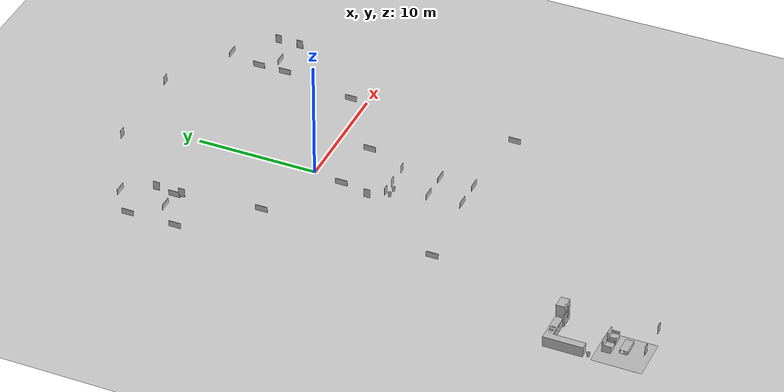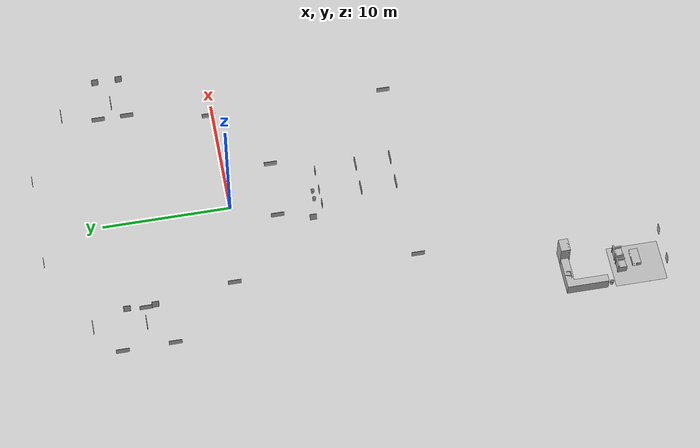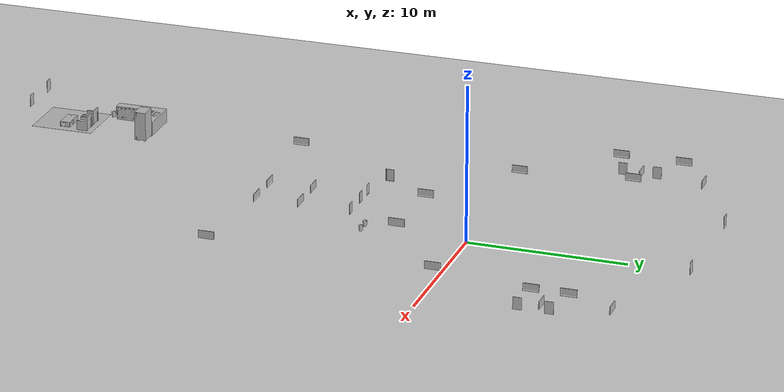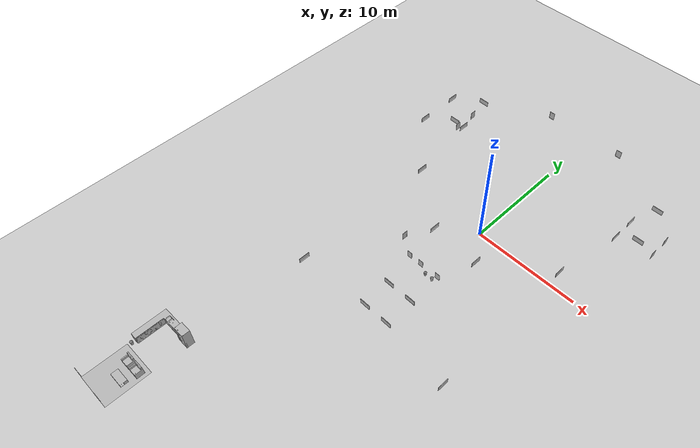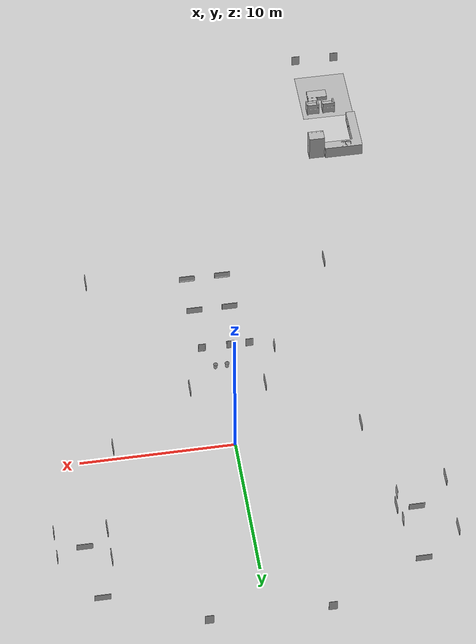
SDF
<sdf version="1.7">
 <world name="world">
  <gravity>0 0 -9.8</gravity>
  <physics name="default_physics" default="0" type="ode">
   <max_step_size>0.001</max_step_size>
   <real_time_factor>1</real_time_factor>
   <real_time_update_rate>1000</real_time_update_rate>
  </physics>
  <scene><ambient>0.6 0.6 0.6 1</ambient><background>0.4 0.4 0.4 1</background><shadows>0</shadows></scene>
  <light name="sun" type="directional">
   <pose>0 0 10 0 -0 0</pose>
   <diffuse>0.8 0.8 0.8 1</diffuse>
   <specular>0.2 0.2 0.2 1</specular>
   <attenuation>
    <range>1000</range>
    <constant>0.9</constant>
    <linear>0.01</linear>
    <quadratic>0.001</quadratic>
   </attenuation>
   <direction>-0.5 0.1 -0.9</direction>
   <spot><inner_angle>0</inner_angle><outer_angle>0</outer_angle><falloff>0</falloff></spot>
  </light>
  <model name="ground_plane">
   <static>1</static>
   <link name="link">
    <collision name="collision">
     <geometry><plane><normal>0 0 1</normal><size>100 100</size></plane></geometry>
     <surface>
      <contact><collide_bitmask>65535</collide_bitmask></contact>
      <friction><ode><mu>100</mu><mu2>50</mu2></ode></friction>
     </surface>
    </collision>
    <visual name="visual">
     <cast_shadows>0</cast_shadows>
     <geometry><plane><normal>0 0 1</normal><size>100 100</size></plane></geometry>
     <material>
      <script><uri>file://media/materials/scripts/gazebo.material</uri><name>Gazebo/Grey</name></script>
     </material>
    </visual>
   </link>
   <pose>0 0 -0.1 0 -0 0</pose>
  </model>
  <model name="CGMClassic_1"/>
  <model name="StorageRack_1"/>
  <model name="CGMClassic_2"/>
  <model name="Chair_1"/>
  <model name="Chair_2"/>
  <model name="Scrubs_1"/>
  <model name="Scrubs_2"/>
  <model name="PatientWheelChair_1"/>
  <model name="Scrubs_3"/>
  <model name="WhiteChipChair_1"/>
  <model name="TrolleyBed_1"/>
  <model name="SurgicalTrolley_1"/>
  <model name="CGMClassic_3"/>
  <model name="PotatoChipChair_1"/>
  <model name="PotatoChipChair_2"/>
  <model name="PotatoChipChair_3"/>
  <model name="PotatoChipChair_4"/>
  <model name="PotatoChipChair_5"/>
  <model name="PotatoChipChair_6"/>
  <model name="PotatoChipChair_7"/>
  <model name="PotatoChipChair_8"/>
  <model name="VisitorKidSit_1"/>
  <model name="FemaleVisitorSit_1"/>
  <model name="AdjTable_1"/>
  <model name="PotatoChipChair_9"/>
  <model name="PotatoChipChair_10"/>
  <model name="PotatoChipChair_11"/>
  <model name="PotatoChipChair_12"/>
  <model name="PotatoChipChair_13"/>
  <model name="PotatoChipChair_14"/>
  <model name="PotatoChipChair_15"/>
  <model name="PotatoChipChair_16"/>
  <model name="aws_robomaker_residential_CoffeeTable_01_1">
   <frame name="aws_robomaker_residential_CoffeeTable_01::__model__" attached_to="aws_robomaker_residential_CoffeeTable_01::link">
    <pose relative_to="__model__">-10.2383 -29.9144 0 0 -0 0</pose>
   </frame>
   <link name="aws_robomaker_residential_CoffeeTable_01::link">
    <inertial>
     <mass>21.7</mass>
     <inertia><ixx>0.81375</ixx><ixy>0</ixy><ixz>0</ixz><iyy>2.76675</iyy><iyz>0</iyz><izz>3.254</izz></inertia>
    </inertial>
    <collision name="collision">
     <geometry>
      <mesh>
       <uri>model://aws_robomaker_residential_CoffeeTable_01/meshes/aws_CoffeeTable_01_collision.DAE</uri>
       <scale>1 1 1</scale>
      </mesh>
     </geometry>
     <surface><contact><ode><max_vel>0.01</max_vel></ode></contact></surface>
    </collision>
    <visual name="visual">
     <geometry>
      <mesh><uri>model://aws_robomaker_residential_CoffeeTable_01/meshes/aws_CoffeeTable_01_visual.DAE</uri></mesh>
     </geometry>
     <meta><layer>1</layer></meta>
    </visual>
    <pose relative_to="aws_robomaker_residential_CoffeeTable_01::__model__">0 0 0 0 -0 0</pose>
   </link>
   <static>1</static>
  </model>
  <model name="aws_robomaker_residential_KitchenCabinet_01_1">
   <frame name="aws_robomaker_residential_KitchenCabinet_01::__model__" attached_to="aws_robomaker_residential_KitchenCabinet_01::link">
    <pose relative_to="__model__">-11.1379 -25.6941 0 0 -0 0</pose>
   </frame>
   <link name="aws_robomaker_residential_KitchenCabinet_01::link">
    <inertial><mass>1</mass></inertial>
    <collision name="collision">
     <geometry>
      <mesh>
       <uri>model://aws_robomaker_residential_KitchenCabinet_01/meshes/aws_KitchenCabinet_01_collision.DAE</uri>
       <scale>1 1 1</scale>
      </mesh>
     </geometry>
    </collision>
    <visual name="visual">
     <geometry>
      <mesh>
       <uri>model://aws_robomaker_residential_KitchenCabinet_01/meshes/aws_KitchenCabinet_01_visual.DAE</uri>
      </mesh>
     </geometry>
     <meta><layer>1</layer></meta>
    </visual>
    <pose relative_to="aws_robomaker_residential_KitchenCabinet_01::__model__">0 0 0 0 -0 0</pose>
   </link>
   <static>1</static>
  </model>
  <model name="aws_robomaker_residential_Refrigerator_01_1">
   <frame name="aws_robomaker_residential_Refrigerator_01::__model__" attached_to="aws_robomaker_residential_Refrigerator_01::link">
    <pose relative_to="__model__">-9.28238 -24.5015 0 0 -0 0</pose>
   </frame>
   <link name="aws_robomaker_residential_Refrigerator_01::link">
    <inertial><mass>1</mass></inertial>
    <collision name="collision">
     <geometry>
      <mesh>
       <uri>model://aws_robomaker_residential_Refrigerator_01/meshes/aws_Refrigerator_01_collision.DAE</uri>
       <scale>1 1 1</scale>
      </mesh>
     </geometry>
    </collision>
    <visual name="visual">
     <geometry>
      <mesh>
       <uri>model://aws_robomaker_residential_Refrigerator_01/meshes/aws_Refrigerator_01_visual.DAE</uri>
      </mesh>
     </geometry>
     <meta><layer>1</layer></meta>
    </visual>
    <pose relative_to="aws_robomaker_residential_Refrigerator_01::__model__">0 0 0 0 -0 0</pose>
   </link>
   <static>1</static>
  </model>
  <model name="aws_robomaker_residential_SofaB_01_1">
   <frame name="aws_robomaker_residential_SofaB_01::__model__" attached_to="aws_robomaker_residential_SofaB_01::link">
    <pose relative_to="__model__">-10.8238 -28.6662 -5e-06 -1.3e-05 -2e-06 -1.56116</pose>
   </frame>
   <link name="aws_robomaker_residential_SofaB_01::link">
    <inertial><mass>72.5</mass></inertial>
    <collision name="collision">
     <geometry>
      <mesh>
       <uri>model://aws_robomaker_residential_SofaB_01/meshes/aws_SofaB_01_collision.DAE</uri>
       <scale>1 1 1</scale>
      </mesh>
     </geometry>
    </collision>
    <visual name="visual">
     <geometry>
      <mesh><uri>model://aws_robomaker_residential_SofaB_01/meshes/aws_SofaB_01_visual.DAE</uri></mesh>
     </geometry>
     <meta><layer>1</layer></meta>
    </visual>
    <pose relative_to="aws_robomaker_residential_SofaB_01::__model__">0 0 0 0 -0 0</pose>
   </link>
   <static>1</static>
  </model>
  <model name="aws_robomaker_residential_SofaB_01_2">
   <frame name="aws_robomaker_residential_SofaB_01::__model__" attached_to="aws_robomaker_residential_SofaB_01::link">
    <pose relative_to="__model__">-9.73697 -28.6538 -3e-06 1.3e-05 -4e-06 -1.56077</pose>
   </frame>
   <link name="aws_robomaker_residential_SofaB_01::link">
    <inertial><mass>72.5</mass></inertial>
    <collision name="collision">
     <geometry>
      <mesh>
       <uri>model://aws_robomaker_residential_SofaB_01/meshes/aws_SofaB_01_collision.DAE</uri>
       <scale>1 1 1</scale>
      </mesh>
     </geometry>
    </collision>
    <visual name="visual">
     <geometry>
      <mesh><uri>model://aws_robomaker_residential_SofaB_01/meshes/aws_SofaB_01_visual.DAE</uri></mesh>
     </geometry>
     <meta><layer>1</layer></meta>
    </visual>
    <pose relative_to="aws_robomaker_residential_SofaB_01::__model__">0 0 0 0 -0 0</pose>
   </link>
   <static>1</static>
  </model>
  <model name="aws_robomaker_residential_PortraitA_01_1">
   <frame name="aws_robomaker_residential_PortraitA_01::__model__" attached_to="aws_robomaker_residential_PortraitA_01::link">
    <pose relative_to="__model__">1.14738 -6.92303 1.41115 0 -0 0</pose>
   </frame>
   <link name="aws_robomaker_residential_PortraitA_01::link">
    <inertial><mass>1</mass></inertial>
    <collision name="collision">
     <geometry>
      <mesh>
       <uri>model://aws_robomaker_residential_PortraitA_01/meshes/aws_PortraitA_01_collision.DAE</uri>
       <scale>1 1 1</scale>
      </mesh>
     </geometry>
    </collision>
    <visual name="visual">
     <geometry>
      <mesh><uri>model://aws_robomaker_residential_PortraitA_01/meshes/aws_PortraitA_01_visual.DAE</uri></mesh>
     </geometry>
     <meta><layer>2</layer></meta>
    </visual>
    <pose relative_to="aws_robomaker_residential_PortraitA_01::__model__">0 0 0 0 -0 0</pose>
   </link>
   <static>1</static>
  </model>
  <model name="aws_robomaker_residential_PortraitD_02_1">
   <frame name="aws_robomaker_residential_PortraitD_02::__model__" attached_to="aws_robomaker_residential_PortraitD_02::link">
    <pose relative_to="__model__">2.40772 -3.61975 1.54508 0 0 -1.57619</pose>
   </frame>
   <link name="aws_robomaker_residential_PortraitD_02::link">
    <inertial><mass>1.5</mass></inertial>
    <collision name="collision">
     <geometry>
      <mesh>
       <uri>model://aws_robomaker_residential_PortraitD_02/meshes/aws_PortraitD_01_collision.DAE</uri>
       <scale>1 1 1</scale>
      </mesh>
     </geometry>
    </collision>
    <visual name="visual">
     <geometry>
      <mesh><uri>model://aws_robomaker_residential_PortraitD_02/meshes/aws_PortraitD_01_visual.DAE</uri></mesh>
     </geometry>
     <meta><layer>2</layer></meta>
    </visual>
    <pose relative_to="aws_robomaker_residential_PortraitD_02::__model__">0 0 0 0 -0 0</pose>
   </link>
   <static>1</static>
  </model>
  <model name="MopCart3_1"/>
  <model name="MaleVisitorSit_1"/>
  <model name="Drawer_1"/>
  <model name="Drawer_2"/>
  <model name="OfficeChairBlack_1"/>
  <model name="OfficeChairBlack_2"/>
  <model name="AdjTable_2"/>
  <model name="aws_robomaker_residential_PortraitA_01_2">
   <frame name="aws_robomaker_residential_PortraitA_01::__model__" attached_to="aws_robomaker_residential_PortraitA_01::link">
    <pose relative_to="__model__">-0.706092 -6.93108 1.41115 0 -0 0</pose>
   </frame>
   <link name="aws_robomaker_residential_PortraitA_01::link">
    <inertial><mass>1</mass></inertial>
    <collision name="collision">
     <geometry>
      <mesh>
       <uri>model://aws_robomaker_residential_PortraitA_01/meshes/aws_PortraitA_01_collision.DAE</uri>
       <scale>1 1 1</scale>
      </mesh>
     </geometry>
    </collision>
    <visual name="visual">
     <geometry>
      <mesh><uri>model://aws_robomaker_residential_PortraitA_01/meshes/aws_PortraitA_01_visual.DAE</uri></mesh>
     </geometry>
     <meta><layer>2</layer></meta>
    </visual>
    <pose relative_to="aws_robomaker_residential_PortraitA_01::__model__">0 0 0 0 -0 0</pose>
   </link>
   <static>1</static>
  </model>
  <model name="aws_robomaker_residential_PortraitA_01_3">
   <frame name="aws_robomaker_residential_PortraitA_01::__model__" attached_to="aws_robomaker_residential_PortraitA_01::link">
    <pose relative_to="__model__">-1.97245 -6.9216 1.41115 0 -0 0</pose>
   </frame>
   <link name="aws_robomaker_residential_PortraitA_01::link">
    <inertial><mass>1</mass></inertial>
    <collision name="collision">
     <geometry>
      <mesh>
       <uri>model://aws_robomaker_residential_PortraitA_01/meshes/aws_PortraitA_01_collision.DAE</uri>
       <scale>1 1 1</scale>
      </mesh>
     </geometry>
    </collision>
    <visual name="visual">
     <geometry>
      <mesh><uri>model://aws_robomaker_residential_PortraitA_01/meshes/aws_PortraitA_01_visual.DAE</uri></mesh>
     </geometry>
     <meta><layer>2</layer></meta>
    </visual>
    <pose relative_to="aws_robomaker_residential_PortraitA_01::__model__">0 0 0 0 -0 0</pose>
   </link>
   <static>1</static>
  </model>
  <model name="Drawer_3"/>
  <model name="Drawer_4"/>
  <model name="aws_robomaker_residential_PortraitD_02_2">
   <frame name="aws_robomaker_residential_PortraitD_02::__model__" attached_to="aws_robomaker_residential_PortraitD_02::link">
    <pose relative_to="__model__">-2.43341 -3.38621 1.54508 0 -0 1.57083</pose>
   </frame>
   <link name="aws_robomaker_residential_PortraitD_02::link">
    <inertial><mass>1.5</mass></inertial>
    <collision name="collision">
     <geometry>
      <mesh>
       <uri>model://aws_robomaker_residential_PortraitD_02/meshes/aws_PortraitD_01_collision.DAE</uri>
       <scale>1 1 1</scale>
      </mesh>
     </geometry>
    </collision>
    <visual name="visual">
     <geometry>
      <mesh><uri>model://aws_robomaker_residential_PortraitD_02/meshes/aws_PortraitD_01_visual.DAE</uri></mesh>
     </geometry>
     <meta><layer>2</layer></meta>
    </visual>
    <pose relative_to="aws_robomaker_residential_PortraitD_02::__model__">0 0 0 0 -0 0</pose>
   </link>
   <static>1</static>
  </model>
  <model name="ElderLadyPatient_1"/>
  <model name="ElderLadyPatient_2"/>
  <model name="CGMClassic_4"/>
  <model name="aws_robomaker_residential_Trash_01_1">
   <frame name="aws_robomaker_residential_Trash_01::__model__" attached_to="aws_robomaker_residential_Trash_01::link">
    <pose relative_to="__model__">0.316178 -6.58235 0.000903 0 -2e-06 0</pose>
   </frame>
   <link name="aws_robomaker_residential_Trash_01::link">
    <inertial>
     <mass>0.1</mass>
     <inertia><ixy>0</ixy><ixz>0</ixz><iyz>0</iyz><ixx>0.05288</ixx><iyy>0.05288</iyy><izz>0.09132</izz></inertia>
    </inertial>
    <collision name="collision">
     <geometry>
      <mesh>
       <uri>model://aws_robomaker_residential_Trash_01/meshes/aws_Trash_01_collision.DAE</uri>
       <scale>1 1 1</scale>
      </mesh>
     </geometry>
    </collision>
    <visual name="visual">
     <geometry>
      <mesh><uri>model://aws_robomaker_residential_Trash_01/meshes/aws_Trash_01_visual.DAE</uri></mesh>
     </geometry>
     <meta><layer>1</layer></meta>
    </visual>
    <pose relative_to="aws_robomaker_residential_Trash_01::__model__">0 0 0 0 -0 0</pose>
   </link>
   <static>1</static>
  </model>
  <model name="aws_robomaker_residential_Trash_01_2">
   <frame name="aws_robomaker_residential_Trash_01::__model__" attached_to="aws_robomaker_residential_Trash_01::link">
    <pose relative_to="__model__">-0.436645 -6.57758 0.000903 -1e-06 -1e-06 0</pose>
   </frame>
   <link name="aws_robomaker_residential_Trash_01::link">
    <inertial>
     <mass>0.1</mass>
     <inertia><ixy>0</ixy><ixz>0</ixz><iyz>0</iyz><ixx>0.05288</ixx><iyy>0.05288</iyy><izz>0.09132</izz></inertia>
    </inertial>
    <collision name="collision">
     <geometry>
      <mesh>
       <uri>model://aws_robomaker_residential_Trash_01/meshes/aws_Trash_01_collision.DAE</uri>
       <scale>1 1 1</scale>
      </mesh>
     </geometry>
    </collision>
    <visual name="visual">
     <geometry>
      <mesh><uri>model://aws_robomaker_residential_Trash_01/meshes/aws_Trash_01_visual.DAE</uri></mesh>
     </geometry>
     <meta><layer>1</layer></meta>
    </visual>
    <pose relative_to="aws_robomaker_residential_Trash_01::__model__">0 0 0 0 -0 0</pose>
   </link>
   <static>1</static>
  </model>
  <model name="aws_robomaker_residential_Trash_01_3">
   <frame name="aws_robomaker_residential_Trash_01::__model__" attached_to="aws_robomaker_residential_Trash_01::link">
    <pose relative_to="__model__">-12.1773 -27.6293 0.000894 -1e-06 -1e-06 0</pose>
   </frame>
   <link name="aws_robomaker_residential_Trash_01::link">
    <inertial>
     <mass>0.1</mass>
     <inertia><ixy>0</ixy><ixz>0</ixz><iyz>0</iyz><ixx>0.05288</ixx><iyy>0.05288</iyy><izz>0.09132</izz></inertia>
    </inertial>
    <collision name="collision">
     <geometry>
      <mesh>
       <uri>model://aws_robomaker_residential_Trash_01/meshes/aws_Trash_01_collision.DAE</uri>
       <scale>1 1 1</scale>
      </mesh>
     </geometry>
    </collision>
    <visual name="visual">
     <geometry>
      <mesh><uri>model://aws_robomaker_residential_Trash_01/meshes/aws_Trash_01_visual.DAE</uri></mesh>
     </geometry>
     <meta><layer>1</layer></meta>
    </visual>
    <pose relative_to="aws_robomaker_residential_Trash_01::__model__">0 0 0 0 -0 0</pose>
   </link>
   <static>1</static>
  </model>
  <model name="aws_robomaker_residential_PortraitE_01_1">
   <frame name="aws_robomaker_residential_PortraitE_01::__model__" attached_to="aws_robomaker_residential_PortraitE_01::link">
    <pose relative_to="__model__">-9.06141 -31.9238 1.38136 0 -0 0</pose>
   </frame>
   <link name="aws_robomaker_residential_PortraitE_01::link">
    <inertial><mass>1</mass></inertial>
    <collision name="collision">
     <geometry>
      <mesh>
       <uri>model://aws_robomaker_residential_PortraitE_01/meshes/aws_PortraitE_01_collision.DAE</uri>
       <scale>1 1 1</scale>
      </mesh>
     </geometry>
    </collision>
    <visual name="visual">
     <geometry>
      <mesh><uri>model://aws_robomaker_residential_PortraitE_01/meshes/aws_PortraitE_01_visual.DAE</uri></mesh>
     </geometry>
     <meta><layer>2</layer></meta>
    </visual>
    <pose relative_to="aws_robomaker_residential_PortraitE_01::__model__">0 0 0 0 -0 0</pose>
   </link>
   <static>1</static>
  </model>
  <model name="aws_robomaker_residential_PortraitE_01_2">
   <frame name="aws_robomaker_residential_PortraitE_01::__model__" attached_to="aws_robomaker_residential_PortraitE_01::link">
    <pose relative_to="__model__">-11.7398 -31.9011 1.38136 0 -0 0</pose>
   </frame>
   <link name="aws_robomaker_residential_PortraitE_01::link">
    <inertial><mass>1</mass></inertial>
    <collision name="collision">
     <geometry>
      <mesh>
       <uri>model://aws_robomaker_residential_PortraitE_01/meshes/aws_PortraitE_01_collision.DAE</uri>
       <scale>1 1 1</scale>
      </mesh>
     </geometry>
    </collision>
    <visual name="visual">
     <geometry>
      <mesh><uri>model://aws_robomaker_residential_PortraitE_01/meshes/aws_PortraitE_01_visual.DAE</uri></mesh>
     </geometry>
     <meta><layer>2</layer></meta>
    </visual>
    <pose relative_to="aws_robomaker_residential_PortraitE_01::__model__">0 0 0 0 -0 0</pose>
   </link>
   <static>1</static>
  </model>
  <model name="InstrumentCart1_1"/>
  <model name="ElderMalePatient_1"/>
  <model name="InstrumentCart2_1"/>
  <model name="InstrumentCart2_2"/>
  <model name="aws_robomaker_residential_Carpet_01_1">
   <frame name="aws_robomaker_residential_Carpet_01::__model__" attached_to="aws_robomaker_residential_Carpet_01::link">
    <pose relative_to="__model__">-10.7338 -29.9243 0 0 -0 0</pose>
   </frame>
   <link name="aws_robomaker_residential_Carpet_01::link">
    <inertial><mass>8.1</mass></inertial>
    <collision name="collision">
     <geometry>
      <mesh>
       <uri>model://aws_robomaker_residential_Carpet_01/meshes/aws_Carpet_01_collision.DAE</uri>
       <scale>1 1 0.95</scale>
      </mesh>
     </geometry>
     <pose>0 0 -0.01 0 -0 0</pose>
    </collision>
    <visual name="visual">
     <geometry>
      <mesh><uri>model://aws_robomaker_residential_Carpet_01/meshes/aws_Carpet_01_visual.DAE</uri></mesh>
     </geometry>
     <meta><layer>1</layer></meta>
    </visual>
    <pose relative_to="aws_robomaker_residential_Carpet_01::__model__">0 0 0 0 -0 0</pose>
   </link>
   <static>1</static>
  </model>
  <model name="MetalCabinet_1"/>
  <model name="MetalCabinet_2"/>
  <model name="CGMClassic_5"/>
  <model name="CGMClassic_6"/>
  <model name="BedTable_1"/>
  <model name="BedTable_2"/>
  <model name="BedsideTable_1"/>
  <model name="AnesthesiaMachine_1"/>
  <model name="TrolleyBedPatient_1"/>
  <model name="Scrubs_4"/>
  <model name="Shower_1"/>
  <model name="Shower_2"/>
  <model name="SurgicalTrolley_2"/>
  <model name="SurgicalTrolley_3"/>
  <model name="SurgicalTrolleyMed_1"/>
  <model name="Scrubs_5"/>
  <model name="InstrumentCart1_2"/>
  <model name="InstrumentCart2_3"/>
  <model name="StorageRackCovered_1"/>
  <model name="StorageRack_2"/>
  <model name="KitchenSink_1"/>
  <model name="KitchenSink_2"/>
  <model name="Toilet_1"/>
  <model name="Toilet_2"/>
  <model name="aws_robomaker_residential_PortraitD_01_1">
   <frame name="aws_robomaker_residential_PortraitD_01::__model__" attached_to="aws_robomaker_residential_PortraitD_01::link">
    <pose relative_to="__model__">-1.14723 -10.143 1.57344 0 -0 0</pose>
   </frame>
   <link name="aws_robomaker_residential_PortraitD_01::link">
    <inertial><mass>1.5</mass></inertial>
    <collision name="collision">
     <geometry>
      <mesh>
       <uri>model://aws_robomaker_residential_PortraitD_01/meshes/aws_PortraitD_01_collision.DAE</uri>
       <scale>1 1 1</scale>
      </mesh>
     </geometry>
    </collision>
    <visual name="visual">
     <geometry>
      <mesh><uri>model://aws_robomaker_residential_PortraitD_01/meshes/aws_PortraitD_01_visual.DAE</uri></mesh>
     </geometry>
     <meta><layer>2</layer></meta>
    </visual>
    <pose relative_to="aws_robomaker_residential_PortraitD_01::__model__">0 0 0 0 -0 0</pose>
   </link>
   <static>1</static>
  </model>
  <model name="aws_robomaker_residential_PortraitD_01_2">
   <frame name="aws_robomaker_residential_PortraitD_01::__model__" attached_to="aws_robomaker_residential_PortraitD_01::link">
    <pose relative_to="__model__">1.16956 -10.1327 1.57344 0 -0 0</pose>
   </frame>
   <link name="aws_robomaker_residential_PortraitD_01::link">
    <inertial><mass>1.5</mass></inertial>
    <collision name="collision">
     <geometry>
      <mesh>
       <uri>model://aws_robomaker_residential_PortraitD_01/meshes/aws_PortraitD_01_collision.DAE</uri>
       <scale>1 1 1</scale>
      </mesh>
     </geometry>
    </collision>
    <visual name="visual">
     <geometry>
      <mesh><uri>model://aws_robomaker_residential_PortraitD_01/meshes/aws_PortraitD_01_visual.DAE</uri></mesh>
     </geometry>
     <meta><layer>2</layer></meta>
    </visual>
    <pose relative_to="aws_robomaker_residential_PortraitD_01::__model__">0 0 0 0 -0 0</pose>
   </link>
   <static>1</static>
  </model>
  <model name="aws_robomaker_residential_PortraitD_01_3">
   <frame name="aws_robomaker_residential_PortraitD_01::__model__" attached_to="aws_robomaker_residential_PortraitD_01::link">
    <pose relative_to="__model__">1.2703 -12.9084 1.57344 0 0 -3.14134</pose>
   </frame>
   <link name="aws_robomaker_residential_PortraitD_01::link">
    <inertial><mass>1.5</mass></inertial>
    <collision name="collision">
     <geometry>
      <mesh>
       <uri>model://aws_robomaker_residential_PortraitD_01/meshes/aws_PortraitD_01_collision.DAE</uri>
       <scale>1 1 1</scale>
      </mesh>
     </geometry>
    </collision>
    <visual name="visual">
     <geometry>
      <mesh><uri>model://aws_robomaker_residential_PortraitD_01/meshes/aws_PortraitD_01_visual.DAE</uri></mesh>
     </geometry>
     <meta><layer>2</layer></meta>
    </visual>
    <pose relative_to="aws_robomaker_residential_PortraitD_01::__model__">0 0 0 0 -0 0</pose>
   </link>
   <static>1</static>
  </model>
  <model name="aws_robomaker_residential_PortraitD_01_4">
   <frame name="aws_robomaker_residential_PortraitD_01::__model__" attached_to="aws_robomaker_residential_PortraitD_01::link">
    <pose relative_to="__model__">-1.06108 -12.9155 1.57344 0 0 -3.14134</pose>
   </frame>
   <link name="aws_robomaker_residential_PortraitD_01::link">
    <inertial><mass>1.5</mass></inertial>
    <collision name="collision">
     <geometry>
      <mesh>
       <uri>model://aws_robomaker_residential_PortraitD_01/meshes/aws_PortraitD_01_collision.DAE</uri>
       <scale>1 1 1</scale>
      </mesh>
     </geometry>
    </collision>
    <visual name="visual">
     <geometry>
      <mesh><uri>model://aws_robomaker_residential_PortraitD_01/meshes/aws_PortraitD_01_visual.DAE</uri></mesh>
     </geometry>
     <meta><layer>2</layer></meta>
    </visual>
    <pose relative_to="aws_robomaker_residential_PortraitD_01::__model__">0 0 0 0 -0 0</pose>
   </link>
   <static>1</static>
  </model>
  <model name="Toilet_3"/>
  <model name="Toilet_4"/>
  <model name="Toilet_5"/>
  <model name="Toilet_6"/>
  <model name="aws_robomaker_residential_PortraitD_02_3">
   <frame name="aws_robomaker_residential_PortraitD_02::__model__" attached_to="aws_robomaker_residential_PortraitD_02::link">
    <pose relative_to="__model__">7.89294 -13.6155 1.54508 0 0 -1.57619</pose>
   </frame>
   <link name="aws_robomaker_residential_PortraitD_02::link">
    <inertial><mass>1.5</mass></inertial>
    <collision name="collision">
     <geometry>
      <mesh>
       <uri>model://aws_robomaker_residential_PortraitD_02/meshes/aws_PortraitD_01_collision.DAE</uri>
       <scale>1 1 1</scale>
      </mesh>
     </geometry>
    </collision>
    <visual name="visual">
     <geometry>
      <mesh><uri>model://aws_robomaker_residential_PortraitD_02/meshes/aws_PortraitD_01_visual.DAE</uri></mesh>
     </geometry>
     <meta><layer>2</layer></meta>
    </visual>
    <pose relative_to="aws_robomaker_residential_PortraitD_02::__model__">0 0 0 0 -0 0</pose>
   </link>
   <static>1</static>
  </model>
  <model name="aws_robomaker_residential_PortraitD_02_4">
   <frame name="aws_robomaker_residential_PortraitD_02::__model__" attached_to="aws_robomaker_residential_PortraitD_02::link">
    <pose relative_to="__model__">7.88791 0.445446 1.54508 0 0 -1.57619</pose>
   </frame>
   <link name="aws_robomaker_residential_PortraitD_02::link">
    <inertial><mass>1.5</mass></inertial>
    <collision name="collision">
     <geometry>
      <mesh>
       <uri>model://aws_robomaker_residential_PortraitD_02/meshes/aws_PortraitD_01_collision.DAE</uri>
       <scale>1 1 1</scale>
      </mesh>
     </geometry>
    </collision>
    <visual name="visual">
     <geometry>
      <mesh><uri>model://aws_robomaker_residential_PortraitD_02/meshes/aws_PortraitD_01_visual.DAE</uri></mesh>
     </geometry>
     <meta><layer>2</layer></meta>
    </visual>
    <pose relative_to="aws_robomaker_residential_PortraitD_02::__model__">0 0 0 0 -0 0</pose>
   </link>
   <static>1</static>
  </model>
  <model name="aws_robomaker_residential_PortraitD_02_5">
   <frame name="aws_robomaker_residential_PortraitD_02::__model__" attached_to="aws_robomaker_residential_PortraitD_02::link">
    <pose relative_to="__model__">-7.92095 0.84255 1.54508 0 -0 1.57083</pose>
   </frame>
   <link name="aws_robomaker_residential_PortraitD_02::link">
    <inertial><mass>1.5</mass></inertial>
    <collision name="collision">
     <geometry>
      <mesh>
       <uri>model://aws_robomaker_residential_PortraitD_02/meshes/aws_PortraitD_01_collision.DAE</uri>
       <scale>1 1 1</scale>
      </mesh>
     </geometry>
    </collision>
    <visual name="visual">
     <geometry>
      <mesh><uri>model://aws_robomaker_residential_PortraitD_02/meshes/aws_PortraitD_01_visual.DAE</uri></mesh>
     </geometry>
     <meta><layer>2</layer></meta>
    </visual>
    <pose relative_to="aws_robomaker_residential_PortraitD_02::__model__">0 0 0 0 -0 0</pose>
   </link>
   <static>1</static>
  </model>
  <model name="aws_robomaker_residential_PortraitD_02_6">
   <frame name="aws_robomaker_residential_PortraitD_02::__model__" attached_to="aws_robomaker_residential_PortraitD_02::link">
    <pose relative_to="__model__">-7.90937 -13.3417 1.54508 0 -0 1.57083</pose>
   </frame>
   <link name="aws_robomaker_residential_PortraitD_02::link">
    <inertial><mass>1.5</mass></inertial>
    <collision name="collision">
     <geometry>
      <mesh>
       <uri>model://aws_robomaker_residential_PortraitD_02/meshes/aws_PortraitD_01_collision.DAE</uri>
       <scale>1 1 1</scale>
      </mesh>
     </geometry>
    </collision>
    <visual name="visual">
     <geometry>
      <mesh><uri>model://aws_robomaker_residential_PortraitD_02/meshes/aws_PortraitD_01_visual.DAE</uri></mesh>
     </geometry>
     <meta><layer>2</layer></meta>
    </visual>
    <pose relative_to="aws_robomaker_residential_PortraitD_02::__model__">0 0 0 0 -0 0</pose>
   </link>
   <static>1</static>
  </model>
  <model name="aws_robomaker_residential_PortraitD_02_7">
   <frame name="aws_robomaker_residential_PortraitD_02::__model__" attached_to="aws_robomaker_residential_PortraitD_02::link">
    <pose relative_to="__model__">-12.3841 6.01232 1.54508 0 -0 1.57083</pose>
   </frame>
   <link name="aws_robomaker_residential_PortraitD_02::link">
    <inertial><mass>1.5</mass></inertial>
    <collision name="collision">
     <geometry>
      <mesh>
       <uri>model://aws_robomaker_residential_PortraitD_02/meshes/aws_PortraitD_01_collision.DAE</uri>
       <scale>1 1 1</scale>
      </mesh>
     </geometry>
    </collision>
    <visual name="visual">
     <geometry>
      <mesh><uri>model://aws_robomaker_residential_PortraitD_02/meshes/aws_PortraitD_01_visual.DAE</uri></mesh>
     </geometry>
     <meta><layer>2</layer></meta>
    </visual>
    <pose relative_to="aws_robomaker_residential_PortraitD_02::__model__">0 0 0 0 -0 0</pose>
   </link>
   <static>1</static>
  </model>
  <model name="aws_robomaker_residential_PortraitD_02_8">
   <frame name="aws_robomaker_residential_PortraitD_02::__model__" attached_to="aws_robomaker_residential_PortraitD_02::link">
    <pose relative_to="__model__">-12.4276 9.98828 1.54508 0 -0 1.57083</pose>
   </frame>
   <link name="aws_robomaker_residential_PortraitD_02::link">
    <inertial><mass>1.5</mass></inertial>
    <collision name="collision">
     <geometry>
      <mesh>
       <uri>model://aws_robomaker_residential_PortraitD_02/meshes/aws_PortraitD_01_collision.DAE</uri>
       <scale>1 1 1</scale>
      </mesh>
     </geometry>
    </collision>
    <visual name="visual">
     <geometry>
      <mesh><uri>model://aws_robomaker_residential_PortraitD_02/meshes/aws_PortraitD_01_visual.DAE</uri></mesh>
     </geometry>
     <meta><layer>2</layer></meta>
    </visual>
    <pose relative_to="aws_robomaker_residential_PortraitD_02::__model__">0 0 0 0 -0 0</pose>
   </link>
   <static>1</static>
  </model>
  <model name="aws_robomaker_residential_PortraitE_02_1">
   <frame name="aws_robomaker_residential_PortraitE_02::__model__" attached_to="aws_robomaker_residential_PortraitE_02::link">
    <pose relative_to="__model__">-9.08927 9.19494 1.84129 0 0 -1.5625</pose>
   </frame>
   <link name="aws_robomaker_residential_PortraitE_02::link">
    <inertial><mass>1</mass></inertial>
    <collision name="collision">
     <geometry>
      <mesh>
       <uri>model://aws_robomaker_residential_PortraitE_02/meshes/aws_PortraitE_01_collision.DAE</uri>
       <scale>1 1 1</scale>
      </mesh>
     </geometry>
    </collision>
    <visual name="visual">
     <geometry>
      <mesh><uri>model://aws_robomaker_residential_PortraitE_02/meshes/aws_PortraitE_01_visual.DAE</uri></mesh>
     </geometry>
     <meta><layer>2</layer></meta>
    </visual>
    <pose relative_to="aws_robomaker_residential_PortraitE_02::__model__">0 0 0 0 -0 0</pose>
   </link>
   <static>1</static>
  </model>
  <model name="aws_robomaker_residential_PortraitD_02_9">
   <frame name="aws_robomaker_residential_PortraitD_02::__model__" attached_to="aws_robomaker_residential_PortraitD_02::link">
    <pose relative_to="__model__">-8.94468 7.73571 1.54508 0 -0 1.57083</pose>
   </frame>
   <link name="aws_robomaker_residential_PortraitD_02::link">
    <inertial><mass>1.5</mass></inertial>
    <collision name="collision">
     <geometry>
      <mesh>
       <uri>model://aws_robomaker_residential_PortraitD_02/meshes/aws_PortraitD_01_collision.DAE</uri>
       <scale>1 1 1</scale>
      </mesh>
     </geometry>
    </collision>
    <visual name="visual">
     <geometry>
      <mesh><uri>model://aws_robomaker_residential_PortraitD_02/meshes/aws_PortraitD_01_visual.DAE</uri></mesh>
     </geometry>
     <meta><layer>2</layer></meta>
    </visual>
    <pose relative_to="aws_robomaker_residential_PortraitD_02::__model__">0 0 0 0 -0 0</pose>
   </link>
   <static>1</static>
  </model>
  <model name="aws_robomaker_residential_PortraitE_02_2">
   <frame name="aws_robomaker_residential_PortraitE_02::__model__" attached_to="aws_robomaker_residential_PortraitE_02::link">
    <pose relative_to="__model__">-9.08305 7.04089 1.84129 0 0 -1.5625</pose>
   </frame>
   <link name="aws_robomaker_residential_PortraitE_02::link">
    <inertial><mass>1</mass></inertial>
    <collision name="collision">
     <geometry>
      <mesh>
       <uri>model://aws_robomaker_residential_PortraitE_02/meshes/aws_PortraitE_01_collision.DAE</uri>
       <scale>1 1 1</scale>
      </mesh>
     </geometry>
    </collision>
    <visual name="visual">
     <geometry>
      <mesh><uri>model://aws_robomaker_residential_PortraitE_02/meshes/aws_PortraitE_01_visual.DAE</uri></mesh>
     </geometry>
     <meta><layer>2</layer></meta>
    </visual>
    <pose relative_to="aws_robomaker_residential_PortraitE_02::__model__">0 0 0 0 -0 0</pose>
   </link>
   <static>1</static>
  </model>
  <model name="aws_robomaker_residential_PortraitD_01_5">
   <frame name="aws_robomaker_residential_PortraitD_01::__model__" attached_to="aws_robomaker_residential_PortraitD_01::link">
    <pose relative_to="__model__">-9.9148 11.9172 1.40573 0 -0 0</pose>
   </frame>
   <link name="aws_robomaker_residential_PortraitD_01::link">
    <inertial><mass>1.5</mass></inertial>
    <collision name="collision">
     <geometry>
      <mesh>
       <uri>model://aws_robomaker_residential_PortraitD_01/meshes/aws_PortraitD_01_collision.DAE</uri>
       <scale>1 1 1</scale>
      </mesh>
     </geometry>
    </collision>
    <visual name="visual">
     <geometry>
      <mesh><uri>model://aws_robomaker_residential_PortraitD_01/meshes/aws_PortraitD_01_visual.DAE</uri></mesh>
     </geometry>
     <meta><layer>2</layer></meta>
    </visual>
    <pose relative_to="aws_robomaker_residential_PortraitD_01::__model__">0 0 0 0 -0 0</pose>
   </link>
   <static>1</static>
  </model>
  <model name="aws_robomaker_residential_PortraitD_01_6">
   <frame name="aws_robomaker_residential_PortraitD_01::__model__" attached_to="aws_robomaker_residential_PortraitD_01::link">
    <pose relative_to="__model__">-10.2134 7.89752 1.40573 0 -0 0</pose>
   </frame>
   <link name="aws_robomaker_residential_PortraitD_01::link">
    <inertial><mass>1.5</mass></inertial>
    <collision name="collision">
     <geometry>
      <mesh>
       <uri>model://aws_robomaker_residential_PortraitD_01/meshes/aws_PortraitD_01_collision.DAE</uri>
       <scale>1 1 1</scale>
      </mesh>
     </geometry>
    </collision>
    <visual name="visual">
     <geometry>
      <mesh><uri>model://aws_robomaker_residential_PortraitD_01/meshes/aws_PortraitD_01_visual.DAE</uri></mesh>
     </geometry>
     <meta><layer>2</layer></meta>
    </visual>
    <pose relative_to="aws_robomaker_residential_PortraitD_01::__model__">0 0 0 0 -0 0</pose>
   </link>
   <static>1</static>
  </model>
  <model name="CGMClassic_7"/>
  <model name="CGMClassic_8"/>
  <model name="MetalCabinet_3"/>
  <model name="MetalCabinet_4"/>
  <model name="aws_robomaker_residential_PortraitD_02_10">
   <frame name="aws_robomaker_residential_PortraitD_02::__model__" attached_to="aws_robomaker_residential_PortraitD_02::link">
    <pose relative_to="__model__">9.06517 6.78742 1.54508 0 -0 1.57083</pose>
   </frame>
   <link name="aws_robomaker_residential_PortraitD_02::link">
    <inertial><mass>1.5</mass></inertial>
    <collision name="collision">
     <geometry>
      <mesh>
       <uri>model://aws_robomaker_residential_PortraitD_02/meshes/aws_PortraitD_01_collision.DAE</uri>
       <scale>1 1 1</scale>
      </mesh>
     </geometry>
    </collision>
    <visual name="visual">
     <geometry>
      <mesh><uri>model://aws_robomaker_residential_PortraitD_02/meshes/aws_PortraitD_01_visual.DAE</uri></mesh>
     </geometry>
     <meta><layer>2</layer></meta>
    </visual>
    <pose relative_to="aws_robomaker_residential_PortraitD_02::__model__">0 0 0 0 -0 0</pose>
   </link>
   <static>1</static>
  </model>
  <model name="aws_robomaker_residential_PortraitD_02_11">
   <frame name="aws_robomaker_residential_PortraitD_02::__model__" attached_to="aws_robomaker_residential_PortraitD_02::link">
    <pose relative_to="__model__">9.06517 9.05858 1.54508 0 -0 1.57083</pose>
   </frame>
   <link name="aws_robomaker_residential_PortraitD_02::link">
    <inertial><mass>1.5</mass></inertial>
    <collision name="collision">
     <geometry>
      <mesh>
       <uri>model://aws_robomaker_residential_PortraitD_02/meshes/aws_PortraitD_01_collision.DAE</uri>
       <scale>1 1 1</scale>
      </mesh>
     </geometry>
    </collision>
    <visual name="visual">
     <geometry>
      <mesh><uri>model://aws_robomaker_residential_PortraitD_02/meshes/aws_PortraitD_01_visual.DAE</uri></mesh>
     </geometry>
     <meta><layer>2</layer></meta>
    </visual>
    <pose relative_to="aws_robomaker_residential_PortraitD_02::__model__">0 0 0 0 -0 0</pose>
   </link>
   <static>1</static>
  </model>
  <model name="aws_robomaker_residential_PortraitE_02_3">
   <frame name="aws_robomaker_residential_PortraitE_02::__model__" attached_to="aws_robomaker_residential_PortraitE_02::link">
    <pose relative_to="__model__">12.3972 6.98849 1.84129 0 0 -1.5625</pose>
   </frame>
   <link name="aws_robomaker_residential_PortraitE_02::link">
    <inertial><mass>1</mass></inertial>
    <collision name="collision">
     <geometry>
      <mesh>
       <uri>model://aws_robomaker_residential_PortraitE_02/meshes/aws_PortraitE_01_collision.DAE</uri>
       <scale>1 1 1</scale>
      </mesh>
     </geometry>
    </collision>
    <visual name="visual">
     <geometry>
      <mesh><uri>model://aws_robomaker_residential_PortraitE_02/meshes/aws_PortraitE_01_visual.DAE</uri></mesh>
     </geometry>
     <meta><layer>2</layer></meta>
    </visual>
    <pose relative_to="aws_robomaker_residential_PortraitE_02::__model__">0 0 0 0 -0 0</pose>
   </link>
   <static>1</static>
  </model>
  <model name="aws_robomaker_residential_PortraitE_02_4">
   <frame name="aws_robomaker_residential_PortraitE_02::__model__" attached_to="aws_robomaker_residential_PortraitE_02::link">
    <pose relative_to="__model__">12.3972 8.87466 1.84129 0 0 -1.5625</pose>
   </frame>
   <link name="aws_robomaker_residential_PortraitE_02::link">
    <inertial><mass>1</mass></inertial>
    <collision name="collision">
     <geometry>
      <mesh>
       <uri>model://aws_robomaker_residential_PortraitE_02/meshes/aws_PortraitE_01_collision.DAE</uri>
       <scale>1 1 1</scale>
      </mesh>
     </geometry>
    </collision>
    <visual name="visual">
     <geometry>
      <mesh><uri>model://aws_robomaker_residential_PortraitE_02/meshes/aws_PortraitE_01_visual.DAE</uri></mesh>
     </geometry>
     <meta><layer>2</layer></meta>
    </visual>
    <pose relative_to="aws_robomaker_residential_PortraitE_02::__model__">0 0 0 0 -0 0</pose>
   </link>
   <static>1</static>
  </model>
  <model name="aws_robomaker_residential_PortraitE_02_5">
   <frame name="aws_robomaker_residential_PortraitE_02::__model__" attached_to="aws_robomaker_residential_PortraitE_02::link">
    <pose relative_to="__model__">-3.4385 -6.00525 1.84129 0 -0 1.56777</pose>
   </frame>
   <link name="aws_robomaker_residential_PortraitE_02::link">
    <inertial><mass>1</mass></inertial>
    <collision name="collision">
     <geometry>
      <mesh>
       <uri>model://aws_robomaker_residential_PortraitE_02/meshes/aws_PortraitE_01_collision.DAE</uri>
       <scale>1 1 1</scale>
      </mesh>
     </geometry>
    </collision>
    <visual name="visual">
     <geometry>
      <mesh><uri>model://aws_robomaker_residential_PortraitE_02/meshes/aws_PortraitE_01_visual.DAE</uri></mesh>
     </geometry>
     <meta><layer>2</layer></meta>
    </visual>
    <pose relative_to="aws_robomaker_residential_PortraitE_02::__model__">0 0 0 0 -0 0</pose>
   </link>
   <static>1</static>
  </model>
  <model name="aws_robomaker_residential_PortraitD_01_7">
   <frame name="aws_robomaker_residential_PortraitD_01::__model__" attached_to="aws_robomaker_residential_PortraitD_01::link">
    <pose relative_to="__model__">10.596 7.88308 1.40573 0 -0 0</pose>
   </frame>
   <link name="aws_robomaker_residential_PortraitD_01::link">
    <inertial><mass>1.5</mass></inertial>
    <collision name="collision">
     <geometry>
      <mesh>
       <uri>model://aws_robomaker_residential_PortraitD_01/meshes/aws_PortraitD_01_collision.DAE</uri>
       <scale>1 1 1</scale>
      </mesh>
     </geometry>
    </collision>
    <visual name="visual">
     <geometry>
      <mesh><uri>model://aws_robomaker_residential_PortraitD_01/meshes/aws_PortraitD_01_visual.DAE</uri></mesh>
     </geometry>
     <meta><layer>2</layer></meta>
    </visual>
    <pose relative_to="aws_robomaker_residential_PortraitD_01::__model__">0 0 0 0 -0 0</pose>
   </link>
   <static>1</static>
  </model>
  <model name="aws_robomaker_residential_PortraitD_01_8">
   <frame name="aws_robomaker_residential_PortraitD_01::__model__" attached_to="aws_robomaker_residential_PortraitD_01::link">
    <pose relative_to="__model__">9.98896 11.914 1.40573 0 -0 0</pose>
   </frame>
   <link name="aws_robomaker_residential_PortraitD_01::link">
    <inertial><mass>1.5</mass></inertial>
    <collision name="collision">
     <geometry>
      <mesh>
       <uri>model://aws_robomaker_residential_PortraitD_01/meshes/aws_PortraitD_01_collision.DAE</uri>
       <scale>1 1 1</scale>
      </mesh>
     </geometry>
    </collision>
    <visual name="visual">
     <geometry>
      <mesh><uri>model://aws_robomaker_residential_PortraitD_01/meshes/aws_PortraitD_01_visual.DAE</uri></mesh>
     </geometry>
     <meta><layer>2</layer></meta>
    </visual>
    <pose relative_to="aws_robomaker_residential_PortraitD_01::__model__">0 0 0 0 -0 0</pose>
   </link>
   <static>1</static>
  </model>
  <model name="ParkingTrolleyMin_1"/>
  <model name="PatientFSit_1"/>
  <model name="MaleVisitorOnPhone_1"/>
  <model name="FemaleVisitor_1"/>
  <model name="MaleVisitorSit_2"/>
  <model name="Scrubs_6"/>
  <model name="MalePatientBed_1"/>
  <model name="CGMClassic_9"/>
  <model name="StorageRackCoverOpen_1"/>
  <model name="StorageRack_3"/>
  <model name="StorageRack_4"/>
  <model name="StorageRackCovered_2"/>
  <model name="FemaleVisitorSit_2"/>
  <model name="InstrumentCart1_3"/>
  <model name="ParkingTrolleyMax_1"/>
  <model name="ElderMalePatient_2"/>
  <model name="aws_robomaker_residential_PortraitE_02_6">
   <frame name="aws_robomaker_residential_PortraitE_02::__model__" attached_to="aws_robomaker_residential_PortraitE_02::link">
    <pose relative_to="__model__">-3.74211 14.8725 1.54379 0 -0 0</pose>
   </frame>
   <link name="aws_robomaker_residential_PortraitE_02::link">
    <inertial><mass>1</mass></inertial>
    <collision name="collision">
     <geometry>
      <mesh>
       <uri>model://aws_robomaker_residential_PortraitE_02/meshes/aws_PortraitE_01_collision.DAE</uri>
       <scale>1 1 1</scale>
      </mesh>
     </geometry>
    </collision>
    <visual name="visual">
     <geometry>
      <mesh><uri>model://aws_robomaker_residential_PortraitE_02/meshes/aws_PortraitE_01_visual.DAE</uri></mesh>
     </geometry>
     <meta><layer>2</layer></meta>
    </visual>
    <pose relative_to="aws_robomaker_residential_PortraitE_02::__model__">0 0 0 0 -0 0</pose>
   </link>
   <static>1</static>
  </model>
  <model name="aws_robomaker_residential_PortraitE_01_3">
   <frame name="aws_robomaker_residential_PortraitE_01::__model__" attached_to="aws_robomaker_residential_PortraitE_01::link">
    <pose relative_to="__model__">3.85701 14.8779 1.69742 0 -0 0</pose>
   </frame>
   <link name="aws_robomaker_residential_PortraitE_01::link">
    <inertial><mass>1</mass></inertial>
    <collision name="collision">
     <geometry>
      <mesh>
       <uri>model://aws_robomaker_residential_PortraitE_01/meshes/aws_PortraitE_01_collision.DAE</uri>
       <scale>1 1 1</scale>
      </mesh>
     </geometry>
    </collision>
    <visual name="visual">
     <geometry>
      <mesh><uri>model://aws_robomaker_residential_PortraitE_01/meshes/aws_PortraitE_01_visual.DAE</uri></mesh>
     </geometry>
     <meta><layer>2</layer></meta>
    </visual>
    <pose relative_to="aws_robomaker_residential_PortraitE_01::__model__">0 0 0 0 -0 0</pose>
   </link>
   <static>1</static>
  </model>
  <model name="Chair_3"/>
  <model name="XRayMachine_1"/>
  <model name="IVStand_1"/>
  <model name="BloodPressureMonitor_1"/>
  <model name="IVStand_2"/>
  <model name="BMWCart_1"/>
  <model name="Scrubs_7"/>
  <model name="BPCart_1"/>
  <model name="BPCart_2"/>
  <model name="BPCart_3"/>
  <model name="BPCart_4"/>
  <model name="VendingMachine_1"/>
  <model name="VendingMachine_2"/>
  <model name="Chair_4"/>
  <magnetic_field>6e-06 2.3e-05 -4.2e-05</magnetic_field>
  <atmosphere type="adiabatic"/>
  <audio><device>default</device></audio>
  <spherical_coordinates>
   <surface_model>EARTH_WGS84</surface_model>
   <latitude_deg>0</latitude_deg>
   <longitude_deg>0</longitude_deg>
   <elevation>0</elevation>
   <heading_deg>0</heading_deg>
  </spherical_coordinates>
 </world>
</sdf>
